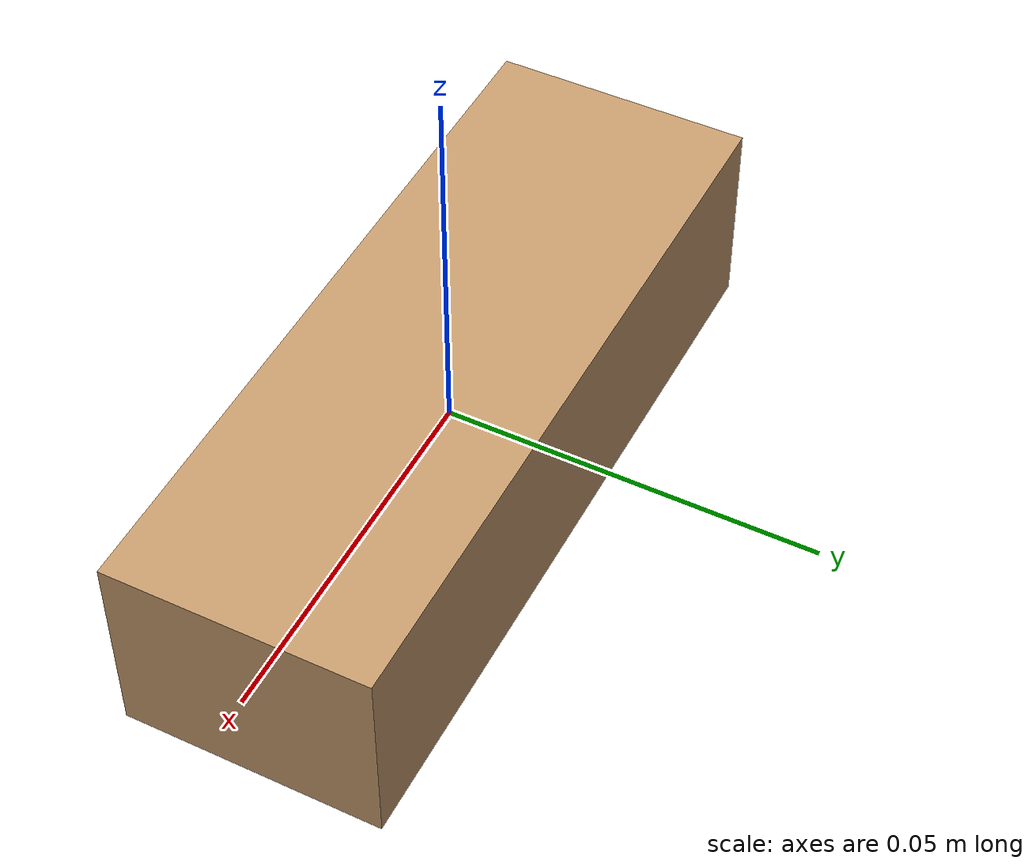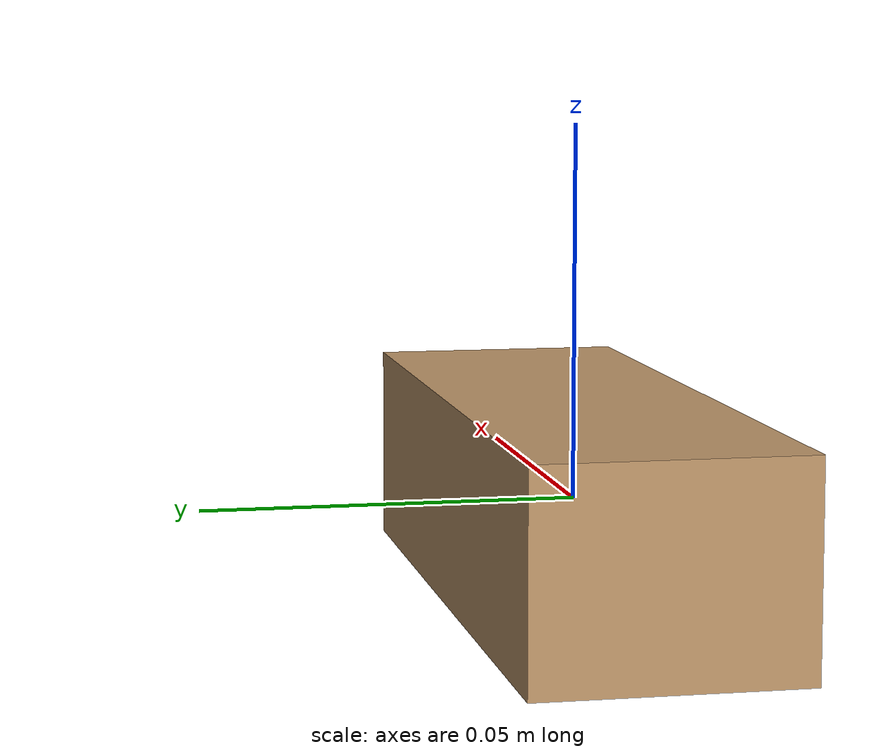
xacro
<?xml version="1.0" ?>
<robot name="turtlebot3_burger" xmlns:xacro="http://www.ros.org/wiki/xacro">

  <xacro:property name="chassis_width" value="0.1375"/>
  <xacro:property name="chassis_length" value="0.1375"/>
  <xacro:property name="chassis_height" value="0.009"/>
  <xacro:property name="chassis_mass" value="0.035"/>

  <xacro:macro name="chassis_macro" params="name">
  <link name="${name}">
    <inertial>
      <mass value="${chassis_mass}"/>
      <origin rpy="0 0 0" xyz="0 0 0"/>
      <inertia ixx="5.537947916666668e-05" ixy="0" ixz="0" iyy="5.537947916666668e-05" iyz="0" izz="0.00011028645833333336"/>
    </inertial>
    <collision>
      <geometry>
        <box size="${chassis_width} ${chassis_length} ${chassis_height}"/>
      </geometry>
    </collision>
    <visual>
      <geometry>
        <box size="${chassis_width} ${chassis_length} ${chassis_height}"/>
      </geometry>
      <material name="blue">
      <color rgba="0.0 0.0 1.0 1.0"/>
    </material>
    </visual>
  </link>
  </xacro:macro>

  <xacro:macro name="spacer_35mm_macro" params="name">
  <link name="${name}">
    <inertial>
      <mass value="0.007"/>
      <origin rpy="0 0 0" xyz="0 0 0"/>
      <inertia ixx="7.583333e-07" ixy="0.0" ixz="0.0" iyy="7.583333e-07" iyz="0.0" izz="8.750000e-08"/>
    </inertial>
    <collision>
      <geometry>
        <cylinder length="0.035" radius="0.005"/>
      </geometry>
      <origin rpy="0 0 0" xyz="0 0 0"/>
    </collision>
    <visual>
      <geometry>
        <cylinder length="0.035" radius="0.005"/>
      </geometry>
      <material name="orange">
      <color rgba="1.0 0.5 0.0 1.0"/>
    </material>
    </visual>
  </link>
  </xacro:macro>

  <xacro:macro name="spacer_45mm_macro" params="name">
  <link name="${name}">
  <inertial>
      <mass value="0.009"/>
      <origin rpy="0 0 0" xyz="0 0 0"/>
      <inertia ixx="1.5749999999999997e-06" ixy="0" ixz="0" iyy="1.5749999999999997e-06" iyz="0" izz="1.125e-07"/>
    </inertial>
    <collision>
      <geometry>
        <cylinder length="0.045" radius="0.005"/>
      </geometry>
      <origin rpy="0 0 0" xyz="0 0 0"/>
    </collision>
    <visual>
      <geometry>
        <cylinder length="0.045" radius="0.005"/>
      </geometry>
      <material name="orange">
      <color rgba="1.0 0.5 0.0 1.0"/>
    </material>
    </visual>
  </link>
  </xacro:macro>

  <link name="battery">
    <!-- Inertial Block -->
    <inertial>
      <mass value="0.2"/>
      <origin rpy="0 0 0" xyz="0 0 0"/>
      <!-- Center of mass assumed at the origin -->
      <inertia ixx="3.302083333333334e-05" ixy="0" ixz="0" iyy="0.00017927083333333337" iyz="0" izz="0.00018708333333333337"/>
    </inertial>
    <!-- Collision Block -->
    <collision>
      <geometry>
        <box size="0.1 0.035 0.0275"/>
        <!-- Width, Depth, Height -->
      </geometry>
      <origin rpy="0 0 0" xyz="0 0 0"/>
      <!-- Assuming the collision box is aligned with the link's frame -->
    </collision>
    <visual>
      <geometry>
        <box size="0.100 0.035 0.0275"/>
      </geometry>
    <material name="Wood">
        <color rgba="0.76 0.60 0.42 1"/>
    </material>

    </visual>
  </link>

  <xacro:macro name="pcb_mount_macro" params="name">
  <link name="${name}">
    <inertial>
      <origin xyz="0 0 0"/>
      <mass value="0.005"/>
      <inertia ixx="8.333333333333334e-08" ixy="0.0" ixz="0.0" iyy="6.376468333333333e-07" iyz="0.0" izz="6.376468333333333e-07"/>
    </inertial>
    <collision>
      <origin xyz="0 0 0"/>
      <geometry>
        <box size="0.03782 0.010 0.010"/>
      </geometry>
    </collision>
    <visual>
      <geometry>
        <box size="0.03782 0.010 0.010"/>
      </geometry>
    <material name="ZincYellow">
        <color rgba="0.956 0.776 0.023 1"/>
    </material>

    </visual>
  </link>
  </xacro:macro>

</robot>
